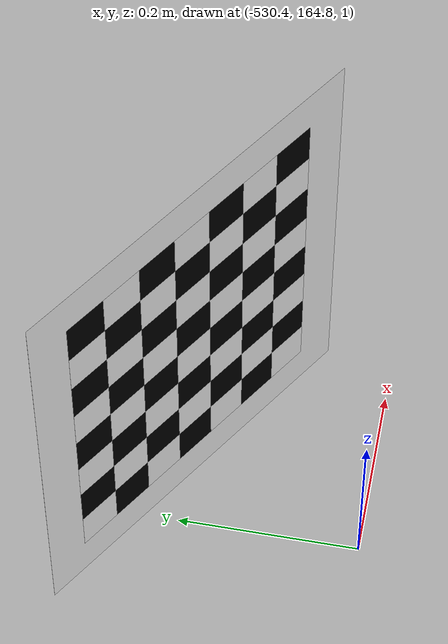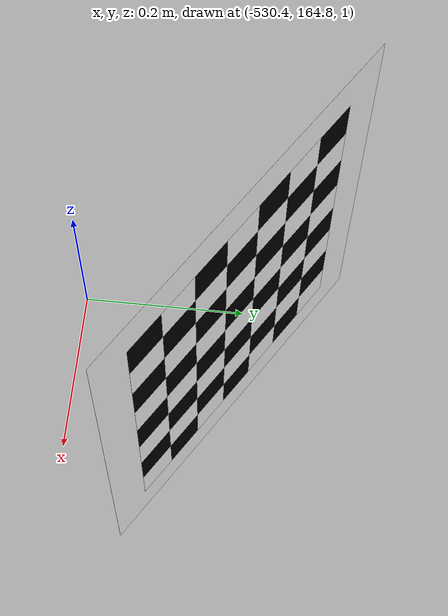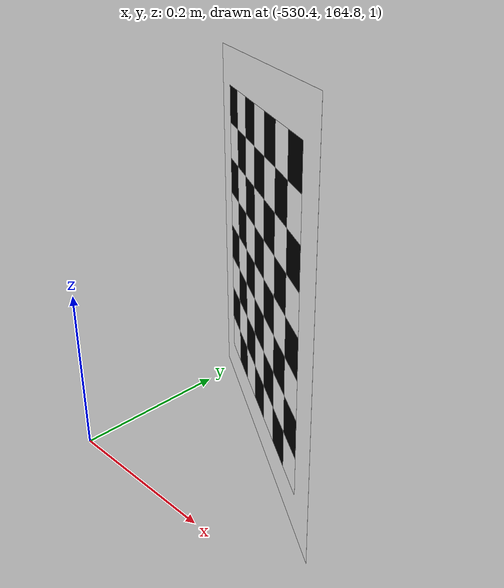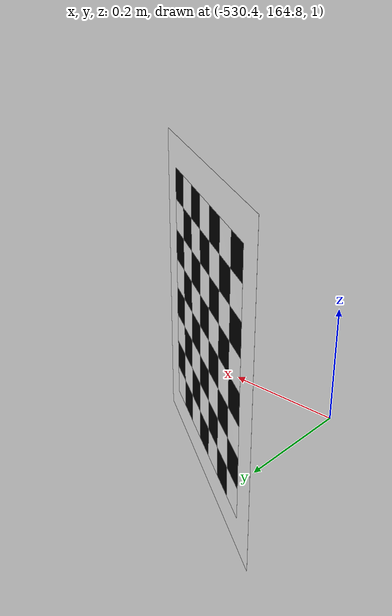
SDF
<sdf version="1.9">
 <world name="wayfinding_task">
  <physics name="4ms" type="dart">
   <max_step_size>0.004</max_step_size>
   <real_time_factor>1.0</real_time_factor>
  </physics>
  <plugin filename="gz-sim-physics-system" name="gz::sim::systems::Physics"/>
  <plugin filename="gz-sim-user-commands-system" name="gz::sim::systems::UserCommands"/>
  <plugin filename="gz-sim-sensors-system" name="gz::sim::systems::Sensors">
   <render_engine>ogre2</render_engine>
   <disable_on_drained_battery>true</disable_on_drained_battery>
  </plugin>
  <plugin filename="gz-sim-imu-system" name="gz::sim::systems::Imu"/>
  <plugin filename="gz-sim-magnetometer-system" name="gz::sim::systems::Magnetometer"/>
  <plugin filename="gz-sim-forcetorque-system" name="gz::sim::systems::ForceTorque"/>
  <plugin filename="gz-sim-particle-emitter2-system" name="gz::sim::systems::ParticleEmitter2"/>
  <plugin filename="gz-sim-scene-broadcaster-system" name="gz::sim::systems::SceneBroadcaster"/>
  <plugin filename="gz-sim-contact-system" name="gz::sim::systems::Contact"/>
  <plugin filename="gz-sim-navsat-system" name="gz::sim::systems::NavSat"/>
  <scene><grid>false</grid><ambient>1.0 1.0 1.0</ambient><background>0.8 0.8 0.8</background></scene>
  <spherical_coordinates>
   <surface_model>EARTH_WGS84</surface_model>
   <world_frame_orientation>ENU</world_frame_orientation>
   <latitude_deg>-33.724223</latitude_deg>
   <longitude_deg>150.679736</longitude_deg>
   <elevation>0.0</elevation>
   <heading_deg>0.0</heading_deg>
  </spherical_coordinates>
  <light type="directional" name="sun">
   <pose>0 0 10 0 0 0</pose>
   <diffuse>0.8 0.8 0.8 1</diffuse>
   <specular>0.2 0.2 0.2 1</specular>
   <attenuation>
    <range>1000</range>
    <constant>0.9</constant>
    <linear>0.01</linear>
    <quadratic>0.001</quadratic>
   </attenuation>
   <direction>-0.5 0.1 -0.9</direction>
  </light>
  <include>
   <name>checkerboard_8_7_0_05</name>
   <pose>-530.3 165 1.2 0 1.57 1.0</pose>
   <uri>model://checkerboard_8_7_0_05</uri>
   <scale>2 2 2</scale>
  </include>
  <plugin filename="libUSVWind.so" name="vrx::USVWind">
   <wind_obj>
    <name>wamv</name>
    <link_name>wamv/base_link</link_name>
    <coeff_vector>.5 .5 .33</coeff_vector>
   </wind_obj>
   <wind_direction>240</wind_direction>
   <wind_mean_velocity>0.0</wind_mean_velocity>
   <var_wind_gain_constants>0</var_wind_gain_constants>
   <var_wind_time_constants>2</var_wind_time_constants>
   <random_seed>10</random_seed>
   <update_rate>10</update_rate>
   <topic_wind_speed>/vrx/debug/wind/speed</topic_wind_speed>
   <topic_wind_direction>/vrx/debug/wind/direction</topic_wind_direction>
  </plugin>
  <plugin filename="libWayfindingScoringPlugin.so" name="vrx::WayfindingScoringPlugin">
   <vehicle>wamv</vehicle>
   <task_name>wayfinding</task_name>
   <waypoints>
    <waypoint><pose>-33.7226766699 150.6740630167 1.21756121843</pose></waypoint>
    <waypoint><pose>-33.7220832884 150.67379127877 1.0</pose></waypoint>
    <waypoint><pose>-33.7226013209 150.67504609858 1.0</pose></waypoint>
   </waypoints>
   <markers><scaling>0.2 0.2 2.0</scaling><height>0.5</height></markers>
   <task_info_topic>/vrx/task/info</task_info_topic>
   <initial_state_duration>10</initial_state_duration>
   <ready_state_duration>10</ready_state_duration>
   <running_state_duration>300</running_state_duration>
   <release_topic>/vrx/release</release_topic>
  </plugin>
  <plugin filename="libPublisherPlugin.so" name="vrx::PublisherPlugin">
   <message type="gz.msgs.Param" topic="/vrx/wavefield/parameters" every="2.0">params {
          key: "direction"
          value {
            type: DOUBLE
            double_value: 0.0
          }
        }
        params {
          key: "gain"
          value {
            type: DOUBLE
            double_value: 0.3
          }
        }
        params {
          key: "period"
          value {
            type: DOUBLE
            double_value: 5
          }
        }
        params {
          key: "steepness"
          value {
            type: DOUBLE
            double_value: 0
          }
        }</message>
  </plugin>
 </world>
</sdf>

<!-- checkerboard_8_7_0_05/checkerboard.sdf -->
<sdf version="1.4">
  <model name="checkerboard_8_7_0_05">
  <static>true</static>
  <link name="checkerboard_8_7_0_05_body">
      <visual name="checker_0_0">
        <pose>-0.17500000000000002 -0.15000000000000002 0 0 0 0</pose>
        <geometry>
          <box>
            <size>0.05 0.05 0.0002</size>
          </box>
        </geometry>
        <material>
          <ambient>0 0 0 1</ambient>
          <diffuse>0 0 0 1</diffuse>
          <specular>0 0 0 1</specular>
          <emissive>0 0 0 1</emissive>
        </material>
      </visual>
      <visual name="checker_0_1">
        <pose>-0.17500000000000002 -0.1 0 0 0 0</pose>
        <geometry>
          <box>
            <size>0.05 0.05 0.0002</size>
          </box>
        </geometry>
        <material>
          <ambient>1 1 1 1</ambient>
          <diffuse>1 1 1 1</diffuse>
          <specular>1 1 1 1</specular>
          <emissive>1 1 1 1</emissive>
        </material>
      </visual>
      <visual name="checker_0_2">
        <pose>-0.17500000000000002 -0.05000000000000002 0 0 0 0</pose>
        <geometry>
          <box>
            <size>0.05 0.05 0.0002</size>
          </box>
        </geometry>
        <material>
          <ambient>0 0 0 1</ambient>
          <diffuse>0 0 0 1</diffuse>
          <specular>0 0 0 1</specular>
          <emissive>0 0 0 1</emissive>
        </material>
      </visual>
      <visual name="checker_0_3">
        <pose>-0.17500000000000002 0.0 0 0 0 0</pose>
        <geometry>
          <box>
            <size>0.05 0.05 0.0002</size>
          </box>
        </geometry>
        <material>
          <ambient>1 1 1 1</ambient>
          <diffuse>1 1 1 1</diffuse>
          <specular>1 1 1 1</specular>
          <emissive>1 1 1 1</emissive>
        </material>
      </visual>
      <visual name="checker_0_4">
        <pose>-0.17500000000000002 0.04999999999999999 0 0 0 0</pose>
        <geometry>
          <box>
            <size>0.05 0.05 0.0002</size>
          </box>
        </geometry>
        <material>
          <ambient>0 0 0 1</ambient>
          <diffuse>0 0 0 1</diffuse>
          <specular>0 0 0 1</specular>
          <emissive>0 0 0 1</emissive>
        </material>
      </visual>
      <visual name="checker_0_5">
        <pose>-0.17500000000000002 0.1 0 0 0 0</pose>
        <geometry>
          <box>
            <size>0.05 0.05 0.0002</size>
          </box>
        </geometry>
        <material>
          <ambient>1 1 1 1</ambient>
          <diffuse>1 1 1 1</diffuse>
          <specular>1 1 1 1</specular>
          <emissive>1 1 1 1</emissive>
        </material>
      </visual>
      <visual name="checker_0_6">
        <pose>-0.17500000000000002 0.15000000000000005 0 0 0 0</pose>
        <geometry>
          <box>
            <size>0.05 0.05 0.0002</size>
          </box>
        </geometry>
        <material>
          <ambient>0 0 0 1</ambient>
          <diffuse>0 0 0 1</diffuse>
          <specular>0 0 0 1</specular>
          <emissive>0 0 0 1</emissive>
        </material>
      </visual>
      <visual name="checker_1_0">
        <pose>-0.125 -0.15000000000000002 0 0 0 0</pose>
        <geometry>
          <box>
            <size>0.05 0.05 0.0002</size>
          </box>
        </geometry>
        <material>
          <ambient>1 1 1 1</ambient>
          <diffuse>1 1 1 1</diffuse>
          <specular>1 1 1 1</specular>
          <emissive>1 1 1 1</emissive>
        </material>
      </visual>
      <visual name="checker_1_1">
        <pose>-0.125 -0.1 0 0 0 0</pose>
        <geometry>
          <box>
            <size>0.05 0.05 0.0002</size>
          </box>
        </geometry>
        <material>
          <ambient>0 0 0 1</ambient>
          <diffuse>0 0 0 1</diffuse>
          <specular>0 0 0 1</specular>
          <emissive>0 0 0 1</emissive>
        </material>
      </visual>
      <visual name="checker_1_2">
        <pose>-0.125 -0.05000000000000002 0 0 0 0</pose>
        <geometry>
          <box>
            <size>0.05 0.05 0.0002</size>
          </box>
        </geometry>
        <material>
          <ambient>1 1 1 1</ambient>
          <diffuse>1 1 1 1</diffuse>
          <specular>1 1 1 1</specular>
          <emissive>1 1 1 1</emissive>
        </material>
      </visual>
      <visual name="checker_1_3">
        <pose>-0.125 0.0 0 0 0 0</pose>
        <geometry>
          <box>
            <size>0.05 0.05 0.0002</size>
          </box>
        </geometry>
        <material>
          <ambient>0 0 0 1</ambient>
          <diffuse>0 0 0 1</diffuse>
          <specular>0 0 0 1</specular>
          <emissive>0 0 0 1</emissive>
        </material>
      </visual>
      <visual name="checker_1_4">
        <pose>-0.125 0.04999999999999999 0 0 0 0</pose>
        <geometry>
          <box>
            <size>0.05 0.05 0.0002</size>
          </box>
        </geometry>
        <material>
          <ambient>1 1 1 1</ambient>
          <diffuse>1 1 1 1</diffuse>
          <specular>1 1 1 1</specular>
          <emissive>1 1 1 1</emissive>
        </material>
      </visual>
      <visual name="checker_1_5">
        <pose>-0.125 0.1 0 0 0 0</pose>
        <geometry>
          <box>
            <size>0.05 0.05 0.0002</size>
          </box>
        </geometry>
        <material>
          <ambient>0 0 0 1</ambient>
          <diffuse>0 0 0 1</diffuse>
          <specular>0 0 0 1</specular>
          <emissive>0 0 0 1</emissive>
        </material>
      </visual>
      <visual name="checker_1_6">
        <pose>-0.125 0.15000000000000005 0 0 0 0</pose>
        <geometry>
          <box>
            <size>0.05 0.05 0.0002</size>
          </box>
        </geometry>
        <material>
          <ambient>1 1 1 1</ambient>
          <diffuse>1 1 1 1</diffuse>
          <specular>1 1 1 1</specular>
          <emissive>1 1 1 1</emissive>
        </material>
      </visual>
      <visual name="checker_2_0">
        <pose>-0.07500000000000001 -0.15000000000000002 0 0 0 0</pose>
        <geometry>
          <box>
            <size>0.05 0.05 0.0002</size>
          </box>
        </geometry>
        <material>
          <ambient>0 0 0 1</ambient>
          <diffuse>0 0 0 1</diffuse>
          <specular>0 0 0 1</specular>
          <emissive>0 0 0 1</emissive>
        </material>
      </visual>
      <visual name="checker_2_1">
        <pose>-0.07500000000000001 -0.1 0 0 0 0</pose>
        <geometry>
          <box>
            <size>0.05 0.05 0.0002</size>
          </box>
        </geometry>
        <material>
          <ambient>1 1 1 1</ambient>
          <diffuse>1 1 1 1</diffuse>
          <specular>1 1 1 1</specular>
          <emissive>1 1 1 1</emissive>
        </material>
      </visual>
      <visual name="checker_2_2">
        <pose>-0.07500000000000001 -0.05000000000000002 0 0 0 0</pose>
        <geometry>
          <box>
            <size>0.05 0.05 0.0002</size>
          </box>
        </geometry>
        <material>
          <ambient>0 0 0 1</ambient>
          <diffuse>0 0 0 1</diffuse>
          <specular>0 0 0 1</specular>
          <emissive>0 0 0 1</emissive>
        </material>
      </visual>
      <visual name="checker_2_3">
        <pose>-0.07500000000000001 0.0 0 0 0 0</pose>
        <geometry>
          <box>
            <size>0.05 0.05 0.0002</size>
          </box>
        </geometry>
        <material>
          <ambient>1 1 1 1</ambient>
          <diffuse>1 1 1 1</diffuse>
          <specular>1 1 1 1</specular>
          <emissive>1 1 1 1</emissive>
        </material>
      </visual>
      <visual name="checker_2_4">
        <pose>-0.07500000000000001 0.04999999999999999 0 0 0 0</pose>
        <geometry>
          <box>
            <size>0.05 0.05 0.0002</size>
          </box>
        </geometry>
        <material>
          <ambient>0 0 0 1</ambient>
          <diffuse>0 0 0 1</diffuse>
          <specular>0 0 0 1</specular>
          <emissive>0 0 0 1</emissive>
        </material>
      </visual>
      <visual name="checker_2_5">
        <pose>-0.07500000000000001 0.1 0 0 0 0</pose>
        <geometry>
          <box>
            <size>0.05 0.05 0.0002</size>
          </box>
        </geometry>
        <material>
          <ambient>1 1 1 1</ambient>
          <diffuse>1 1 1 1</diffuse>
          <specular>1 1 1 1</specular>
          <emissive>1 1 1 1</emissive>
        </material>
      </visual>
      <visual name="checker_2_6">
        <pose>-0.07500000000000001 0.15000000000000005 0 0 0 0</pose>
        <geometry>
          <box>
            <size>0.05 0.05 0.0002</size>
          </box>
        </geometry>
        <material>
          <ambient>0 0 0 1</ambient>
          <diffuse>0 0 0 1</diffuse>
          <specular>0 0 0 1</specular>
          <emissive>0 0 0 1</emissive>
        </material>
      </visual>
      <visual name="checker_3_0">
        <pose>-0.024999999999999994 -0.15000000000000002 0 0 0 0</pose>
        <geometry>
          <box>
            <size>0.05 0.05 0.0002</size>
          </box>
        </geometry>
        <material>
          <ambient>1 1 1 1</ambient>
          <diffuse>1 1 1 1</diffuse>
          <specular>1 1 1 1</specular>
          <emissive>1 1 1 1</emissive>
        </material>
      </visual>
      <visual name="checker_3_1">
        <pose>-0.024999999999999994 -0.1 0 0 0 0</pose>
        <geometry>
          <box>
            <size>0.05 0.05 0.0002</size>
          </box>
        </geometry>
        <material>
          <ambient>0 0 0 1</ambient>
          <diffuse>0 0 0 1</diffuse>
          <specular>0 0 0 1</specular>
          <emissive>0 0 0 1</emissive>
        </material>
      </visual>
      <visual name="checker_3_2">
        <pose>-0.024999999999999994 -0.05000000000000002 0 0 0 0</pose>
        <geometry>
          <box>
            <size>0.05 0.05 0.0002</size>
          </box>
        </geometry>
        <material>
          <ambient>1 1 1 1</ambient>
          <diffuse>1 1 1 1</diffuse>
          <specular>1 1 1 1</specular>
          <emissive>1 1 1 1</emissive>
        </material>
      </visual>
      <visual name="checker_3_3">
        <pose>-0.024999999999999994 0.0 0 0 0 0</pose>
        <geometry>
          <box>
            <size>0.05 0.05 0.0002</size>
          </box>
        </geometry>
        <material>
          <ambient>0 0 0 1</ambient>
          <diffuse>0 0 0 1</diffuse>
          <specular>0 0 0 1</specular>
          <emissive>0 0 0 1</emissive>
        </material>
      </visual>
      <visual name="checker_3_4">
        <pose>-0.024999999999999994 0.04999999999999999 0 0 0 0</pose>
        <geometry>
          <box>
            <size>0.05 0.05 0.0002</size>
          </box>
        </geometry>
        <material>
          <ambient>1 1 1 1</ambient>
          <diffuse>1 1 1 1</diffuse>
          <specular>1 1 1 1</specular>
          <emissive>1 1 1 1</emissive>
        </material>
      </visual>
      <visual name="checker_3_5">
        <pose>-0.024999999999999994 0.1 0 0 0 0</pose>
        <geometry>
          <box>
            <size>0.05 0.05 0.0002</size>
          </box>
        </geometry>
        <material>
          <ambient>0 0 0 1</ambient>
          <diffuse>0 0 0 1</diffuse>
          <specular>0 0 0 1</specular>
          <emissive>0 0 0 1</emissive>
        </material>
      </visual>
      <visual name="checker_3_6">
        <pose>-0.024999999999999994 0.15000000000000005 0 0 0 0</pose>
        <geometry>
          <box>
            <size>0.05 0.05 0.0002</size>
          </box>
        </geometry>
        <material>
          <ambient>1 1 1 1</ambient>
          <diffuse>1 1 1 1</diffuse>
          <specular>1 1 1 1</specular>
          <emissive>1 1 1 1</emissive>
        </material>
      </visual>
      <visual name="checker_4_0">
        <pose>0.024999999999999994 -0.15000000000000002 0 0 0 0</pose>
        <geometry>
          <box>
            <size>0.05 0.05 0.0002</size>
          </box>
        </geometry>
        <material>
          <ambient>0 0 0 1</ambient>
          <diffuse>0 0 0 1</diffuse>
          <specular>0 0 0 1</specular>
          <emissive>0 0 0 1</emissive>
        </material>
      </visual>
      <visual name="checker_4_1">
        <pose>0.024999999999999994 -0.1 0 0 0 0</pose>
        <geometry>
          <box>
            <size>0.05 0.05 0.0002</size>
          </box>
        </geometry>
        <material>
          <ambient>1 1 1 1</ambient>
          <diffuse>1 1 1 1</diffuse>
          <specular>1 1 1 1</specular>
          <emissive>1 1 1 1</emissive>
        </material>
      </visual>
      <visual name="checker_4_2">
        <pose>0.024999999999999994 -0.05000000000000002 0 0 0 0</pose>
        <geometry>
          <box>
            <size>0.05 0.05 0.0002</size>
          </box>
        </geometry>
        <material>
          <ambient>0 0 0 1</ambient>
          <diffuse>0 0 0 1</diffuse>
          <specular>0 0 0 1</specular>
          <emissive>0 0 0 1</emissive>
        </material>
      </visual>
      <visual name="checker_4_3">
        <pose>0.024999999999999994 0.0 0 0 0 0</pose>
        <geometry>
          <box>
            <size>0.05 0.05 0.0002</size>
          </box>
        </geometry>
        <material>
          <ambient>1 1 1 1</ambient>
          <diffuse>1 1 1 1</diffuse>
          <specular>1 1 1 1</specular>
          <emissive>1 1 1 1</emissive>
        </material>
      </visual>
      <visual name="checker_4_4">
        <pose>0.024999999999999994 0.04999999999999999 0 0 0 0</pose>
        <geometry>
          <box>
            <size>0.05 0.05 0.0002</size>
          </box>
        </geometry>
        <material>
          <ambient>0 0 0 1</ambient>
          <diffuse>0 0 0 1</diffuse>
          <specular>0 0 0 1</specular>
          <emissive>0 0 0 1</emissive>
        </material>
      </visual>
      <visual name="checker_4_5">
        <pose>0.024999999999999994 0.1 0 0 0 0</pose>
        <geometry>
          <box>
            <size>0.05 0.05 0.0002</size>
          </box>
        </geometry>
        <material>
          <ambient>1 1 1 1</ambient>
          <diffuse>1 1 1 1</diffuse>
          <specular>1 1 1 1</specular>
          <emissive>1 1 1 1</emissive>
        </material>
      </visual>
      <visual name="checker_4_6">
        <pose>0.024999999999999994 0.15000000000000005 0 0 0 0</pose>
        <geometry>
          <box>
            <size>0.05 0.05 0.0002</size>
          </box>
        </geometry>
        <material>
          <ambient>0 0 0 1</ambient>
          <diffuse>0 0 0 1</diffuse>
          <specular>0 0 0 1</specular>
          <emissive>0 0 0 1</emissive>
        </material>
      </visual>
      <visual name="checker_5_0">
        <pose>0.07500000000000001 -0.15000000000000002 0 0 0 0</pose>
        <geometry>
          <box>
            <size>0.05 0.05 0.0002</size>
          </box>
        </geometry>
        <material>
          <ambient>1 1 1 1</ambient>
          <diffuse>1 1 1 1</diffuse>
          <specular>1 1 1 1</specular>
          <emissive>1 1 1 1</emissive>
        </material>
      </visual>
      <visual name="checker_5_1">
        <pose>0.07500000000000001 -0.1 0 0 0 0</pose>
        <geometry>
          <box>
            <size>0.05 0.05 0.0002</size>
          </box>
        </geometry>
        <material>
          <ambient>0 0 0 1</ambient>
          <diffuse>0 0 0 1</diffuse>
          <specular>0 0 0 1</specular>
          <emissive>0 0 0 1</emissive>
        </material>
      </visual>
      <visual name="checker_5_2">
        <pose>0.07500000000000001 -0.05000000000000002 0 0 0 0</pose>
        <geometry>
          <box>
            <size>0.05 0.05 0.0002</size>
          </box>
        </geometry>
        <material>
          <ambient>1 1 1 1</ambient>
          <diffuse>1 1 1 1</diffuse>
          <specular>1 1 1 1</specular>
          <emissive>1 1 1 1</emissive>
        </material>
      </visual>
      <visual name="checker_5_3">
        <pose>0.07500000000000001 0.0 0 0 0 0</pose>
        <geometry>
          <box>
            <size>0.05 0.05 0.0002</size>
          </box>
        </geometry>
        <material>
          <ambient>0 0 0 1</ambient>
          <diffuse>0 0 0 1</diffuse>
          <specular>0 0 0 1</specular>
          <emissive>0 0 0 1</emissive>
        </material>
      </visual>
      <visual name="checker_5_4">
        <pose>0.07500000000000001 0.04999999999999999 0 0 0 0</pose>
        <geometry>
          <box>
            <size>0.05 0.05 0.0002</size>
          </box>
        </geometry>
        <material>
          <ambient>1 1 1 1</ambient>
          <diffuse>1 1 1 1</diffuse>
          <specular>1 1 1 1</specular>
          <emissive>1 1 1 1</emissive>
        </material>
      </visual>
      <visual name="checker_5_5">
        <pose>0.07500000000000001 0.1 0 0 0 0</pose>
        <geometry>
          <box>
            <size>0.05 0.05 0.0002</size>
          </box>
        </geometry>
        <material>
          <ambient>0 0 0 1</ambient>
          <diffuse>0 0 0 1</diffuse>
          <specular>0 0 0 1</specular>
          <emissive>0 0 0 1</emissive>
        </material>
      </visual>
      <visual name="checker_5_6">
        <pose>0.07500000000000001 0.15000000000000005 0 0 0 0</pose>
        <geometry>
          <box>
            <size>0.05 0.05 0.0002</size>
          </box>
        </geometry>
        <material>
          <ambient>1 1 1 1</ambient>
          <diffuse>1 1 1 1</diffuse>
          <specular>1 1 1 1</specular>
          <emissive>1 1 1 1</emissive>
        </material>
      </visual>
      <visual name="checker_6_0">
        <pose>0.12500000000000006 -0.15000000000000002 0 0 0 0</pose>
        <geometry>
          <box>
            <size>0.05 0.05 0.0002</size>
          </box>
        </geometry>
        <material>
          <ambient>0 0 0 1</ambient>
          <diffuse>0 0 0 1</diffuse>
          <specular>0 0 0 1</specular>
          <emissive>0 0 0 1</emissive>
        </material>
      </visual>
      <visual name="checker_6_1">
        <pose>0.12500000000000006 -0.1 0 0 0 0</pose>
        <geometry>
          <box>
            <size>0.05 0.05 0.0002</size>
          </box>
        </geometry>
        <material>
          <ambient>1 1 1 1</ambient>
          <diffuse>1 1 1 1</diffuse>
          <specular>1 1 1 1</specular>
          <emissive>1 1 1 1</emissive>
        </material>
      </visual>
      <visual name="checker_6_2">
        <pose>0.12500000000000006 -0.05000000000000002 0 0 0 0</pose>
        <geometry>
          <box>
            <size>0.05 0.05 0.0002</size>
          </box>
        </geometry>
        <material>
          <ambient>0 0 0 1</ambient>
          <diffuse>0 0 0 1</diffuse>
          <specular>0 0 0 1</specular>
          <emissive>0 0 0 1</emissive>
        </material>
      </visual>
      <visual name="checker_6_3">
        <pose>0.12500000000000006 0.0 0 0 0 0</pose>
        <geometry>
          <box>
            <size>0.05 0.05 0.0002</size>
          </box>
        </geometry>
        <material>
          <ambient>1 1 1 1</ambient>
          <diffuse>1 1 1 1</diffuse>
          <specular>1 1 1 1</specular>
          <emissive>1 1 1 1</emissive>
        </material>
      </visual>
      <visual name="checker_6_4">
        <pose>0.12500000000000006 0.04999999999999999 0 0 0 0</pose>
        <geometry>
          <box>
            <size>0.05 0.05 0.0002</size>
          </box>
        </geometry>
        <material>
          <ambient>0 0 0 1</ambient>
          <diffuse>0 0 0 1</diffuse>
          <specular>0 0 0 1</specular>
          <emissive>0 0 0 1</emissive>
        </material>
      </visual>
      <visual name="checker_6_5">
        <pose>0.12500000000000006 0.1 0 0 0 0</pose>
        <geometry>
          <box>
            <size>0.05 0.05 0.0002</size>
          </box>
        </geometry>
        <material>
          <ambient>1 1 1 1</ambient>
          <diffuse>1 1 1 1</diffuse>
          <specular>1 1 1 1</specular>
          <emissive>1 1 1 1</emissive>
        </material>
      </visual>
      <visual name="checker_6_6">
        <pose>0.12500000000000006 0.15000000000000005 0 0 0 0</pose>
        <geometry>
          <box>
            <size>0.05 0.05 0.0002</size>
          </box>
        </geometry>
        <material>
          <ambient>0 0 0 1</ambient>
          <diffuse>0 0 0 1</diffuse>
          <specular>0 0 0 1</specular>
          <emissive>0 0 0 1</emissive>
        </material>
      </visual>
      <visual name="checker_7_0">
        <pose>0.17500000000000004 -0.15000000000000002 0 0 0 0</pose>
        <geometry>
          <box>
            <size>0.05 0.05 0.0002</size>
          </box>
        </geometry>
        <material>
          <ambient>1 1 1 1</ambient>
          <diffuse>1 1 1 1</diffuse>
          <specular>1 1 1 1</specular>
          <emissive>1 1 1 1</emissive>
        </material>
      </visual>
      <visual name="checker_7_1">
        <pose>0.17500000000000004 -0.1 0 0 0 0</pose>
        <geometry>
          <box>
            <size>0.05 0.05 0.0002</size>
          </box>
        </geometry>
        <material>
          <ambient>0 0 0 1</ambient>
          <diffuse>0 0 0 1</diffuse>
          <specular>0 0 0 1</specular>
          <emissive>0 0 0 1</emissive>
        </material>
      </visual>
      <visual name="checker_7_2">
        <pose>0.17500000000000004 -0.05000000000000002 0 0 0 0</pose>
        <geometry>
          <box>
            <size>0.05 0.05 0.0002</size>
          </box>
        </geometry>
        <material>
          <ambient>1 1 1 1</ambient>
          <diffuse>1 1 1 1</diffuse>
          <specular>1 1 1 1</specular>
          <emissive>1 1 1 1</emissive>
        </material>
      </visual>
      <visual name="checker_7_3">
        <pose>0.17500000000000004 0.0 0 0 0 0</pose>
        <geometry>
          <box>
            <size>0.05 0.05 0.0002</size>
          </box>
        </geometry>
        <material>
          <ambient>0 0 0 1</ambient>
          <diffuse>0 0 0 1</diffuse>
          <specular>0 0 0 1</specular>
          <emissive>0 0 0 1</emissive>
        </material>
      </visual>
      <visual name="checker_7_4">
        <pose>0.17500000000000004 0.04999999999999999 0 0 0 0</pose>
        <geometry>
          <box>
            <size>0.05 0.05 0.0002</size>
          </box>
        </geometry>
        <material>
          <ambient>1 1 1 1</ambient>
          <diffuse>1 1 1 1</diffuse>
          <specular>1 1 1 1</specular>
          <emissive>1 1 1 1</emissive>
        </material>
      </visual>
      <visual name="checker_7_5">
        <pose>0.17500000000000004 0.1 0 0 0 0</pose>
        <geometry>
          <box>
            <size>0.05 0.05 0.0002</size>
          </box>
        </geometry>
        <material>
          <ambient>0 0 0 1</ambient>
          <diffuse>0 0 0 1</diffuse>
          <specular>0 0 0 1</specular>
          <emissive>0 0 0 1</emissive>
        </material>
      </visual>
      <visual name="checker_7_6">
        <pose>0.17500000000000004 0.15000000000000005 0 0 0 0</pose>
        <geometry>
          <box>
            <size>0.05 0.05 0.0002</size>
          </box>
        </geometry>
        <material>
          <ambient>1 1 1 1</ambient>
          <diffuse>1 1 1 1</diffuse>
          <specular>1 1 1 1</specular>
          <emissive>1 1 1 1</emissive>
        </material>
      </visual>
      <visual name="checker_backdrop">
        <pose>0 0 0 0 0 0</pose>
        <geometry>
          <box>
            <size>0.5 0.45 0.0001</size>
          </box>
        </geometry>
        <material>
          <ambient>1 1 1 1</ambient>
          <diffuse>1 1 1 1</diffuse>
          <specular>1 1 1 1</specular>
          <emissive>1 1 1 1</emissive>
        </material>
      </visual>
    </link>
  </model>
</sdf>
